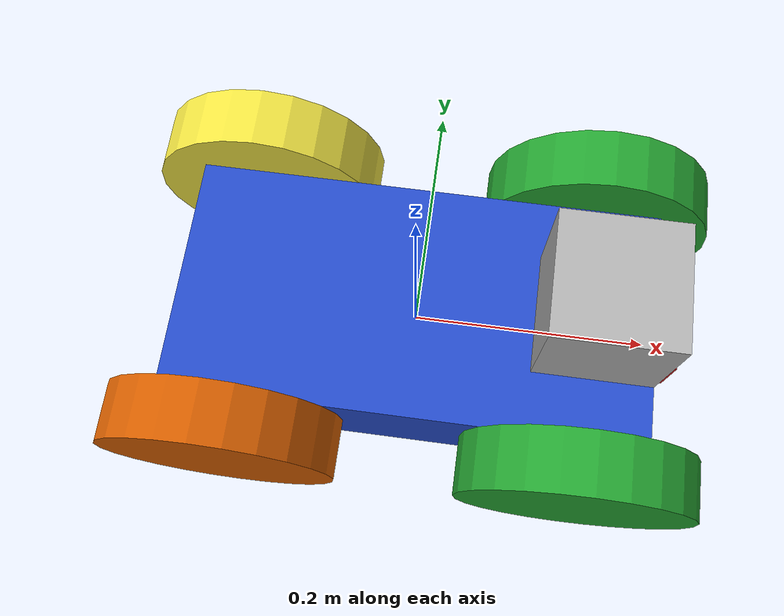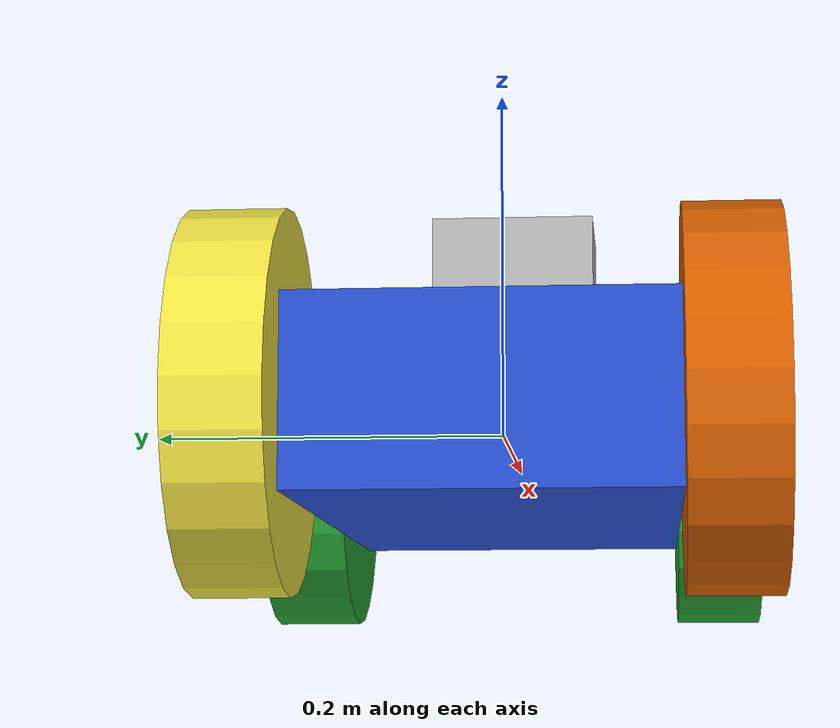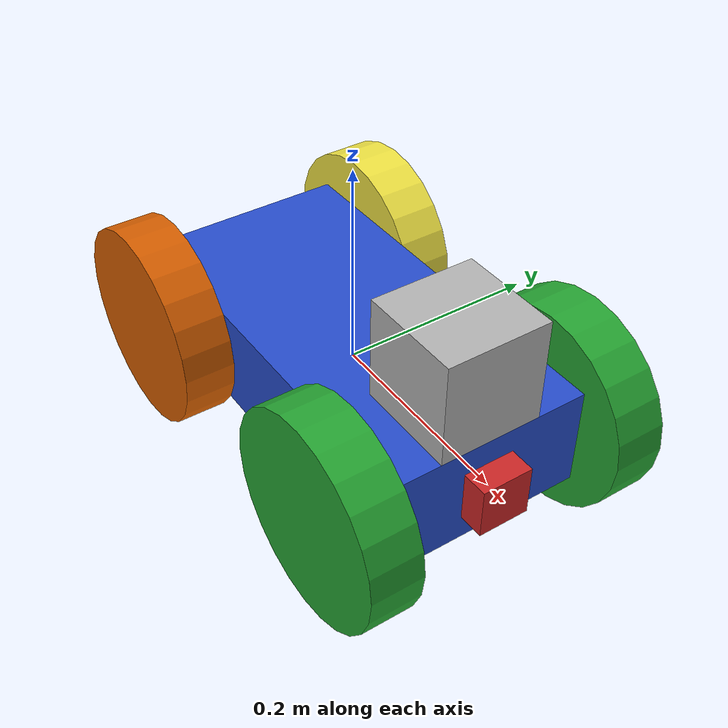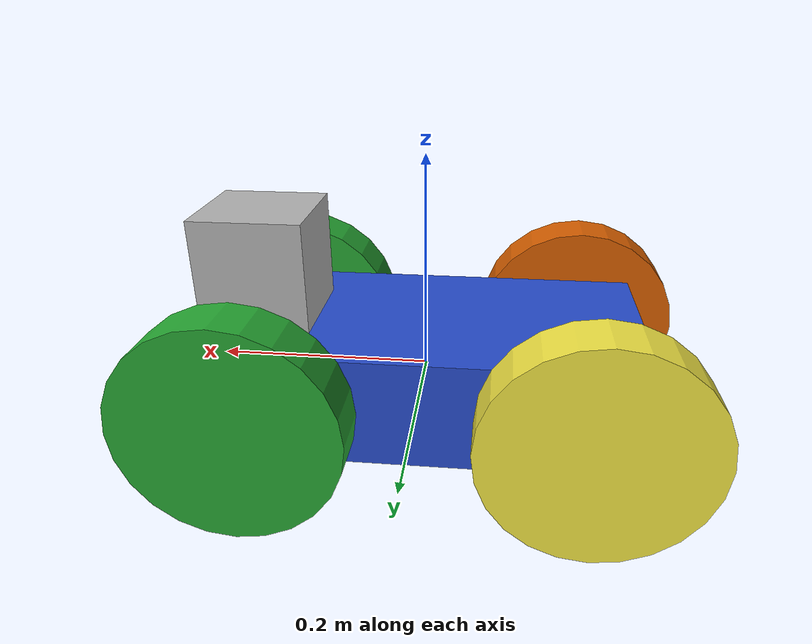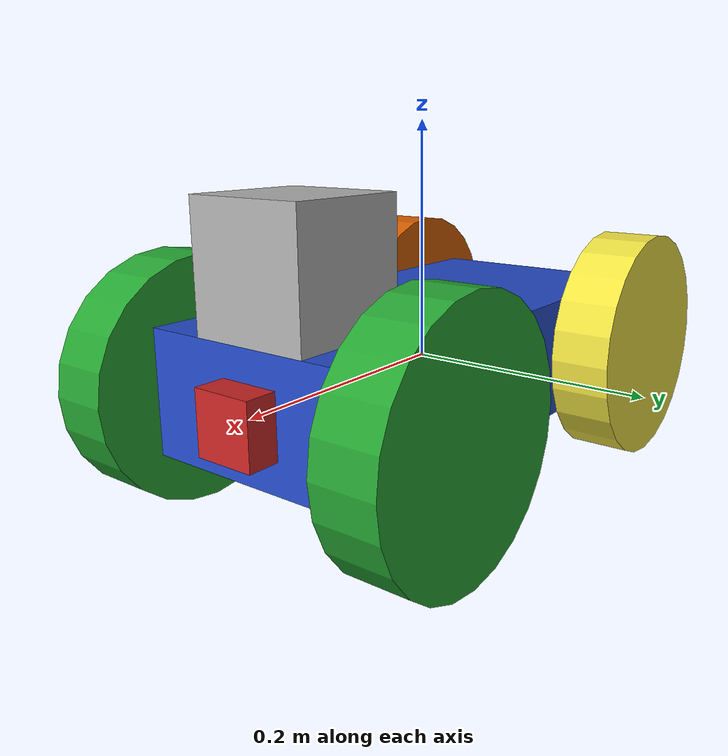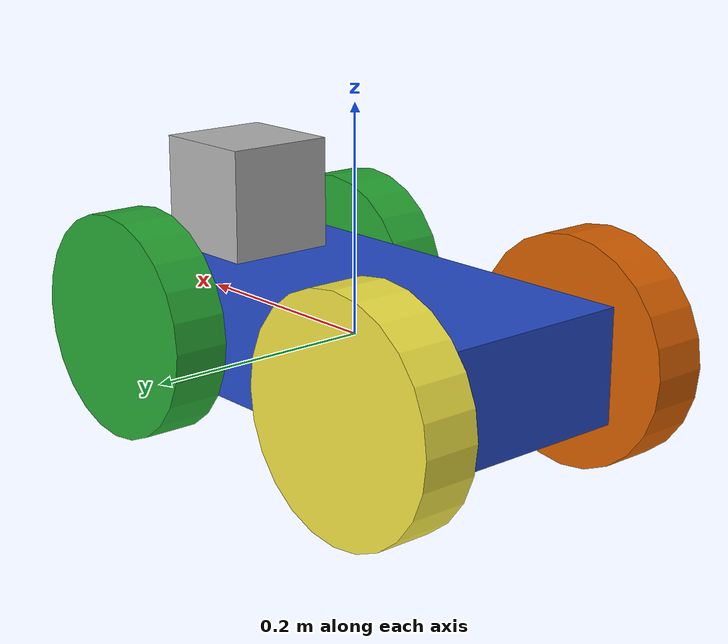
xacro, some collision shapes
<?xml version='1.0'?>

<robot name="my_robot" xmlns:xacro="http://www.ros.org/wiki/xacro">
  <xacro:include filename="$(find my_robot)/urdf/my_robot.gazebo" />
  <link name="robot_footprint"></link>

  <joint name="robot_footprint_joint" type="fixed">
    <origin xyz="0 0 0" rpy="0 0 0" />
    <parent link="robot_footprint"/>
    <child link="chassis" />
  </joint>

  <link name='chassis'>
    <pose>0 0 0.1 0 0 0</pose>

    <inertial>
      <mass value="15.0"/>
      <origin xyz="0.0 0 0" rpy=" 0 0 0"/>
      <inertia
          ixx="0.1" ixy="0" ixz="0"
          iyy="0.1" iyz="0"
          izz="0.1"
      />
    </inertial>

    <collision name='collision'>
      <origin xyz="0 0 0" rpy=" 0 0 0"/>
      <geometry>
        <box size=".4 .2 .1"/>
      </geometry>
    </collision>

    <visual name='chassis_visual'>
      <origin xyz="0 0 0" rpy=" 0 0 0"/>
      <geometry>
        <box size=".4 .2 .1"/>
      </geometry>
    </visual>

  </link>

  <!--left_wheel-->
  <link name='front_left_wheel'>
    <inertial>
      <mass value="5"/>
      <origin xyz="0 0 0" rpy="0 1.5707 1.5707" />
      <inertia
          ixx="0.1" ixy="0" ixz="0"
          iyy="0.1" iyz="0"
          izz="0.1"
      />
    </inertial>

    <collision name='front_left_wheel_collision'>
      <origin  xyz="0 0 0" rpy="0 1.5707 1.5707"/>
      <geometry>
        <cylinder length="0.05" radius="0.1"/>
      </geometry>
    </collision>

    <visual name='front_left_wheel_visual'>
      <origin xyz="0 0 0" rpy="0 1.5707 1.5707"/>
      <geometry>
        <cylinder length="0.05" radius="0.1"/>
      </geometry>
    </visual>

  </link>

  <link name='rear_left_wheel'>
    <inertial>
      <mass value="5"/>
      <origin xyz="0 0 0" rpy="0 1.5707 1.5707" />
      <inertia
          ixx="0.1" ixy="0" ixz="0"
          iyy="0.1" iyz="0"
          izz="0.1"
      />
    </inertial>

    <collision name='rear_left_wheel_collision'>
      <origin  xyz="0 0 0" rpy="0 1.5707 1.5707"/>
      <geometry>
        <cylinder length="0.05" radius="0.1"/>
      </geometry>
    </collision>

    <visual name='rear_left_wheel_visual'>
      <origin xyz="0 0 0" rpy="0 1.5707 1.5707"/>
      <geometry>
        <cylinder length="0.05" radius="0.1"/>
      </geometry>
    </visual>

  </link>

  <!--right_wheel-->
  <link name='front_right_wheel'>
    <inertial>
      <mass value="5"/>
      <origin xyz="0 0 0" rpy="0 1.5707 1.5707" />
      <inertia
          ixx="0.1" ixy="0" ixz="0"
          iyy="0.1" iyz="0"
          izz="0.1"
      />
    </inertial>

    <collision name='front_right_wheel_collision'>
      <origin  xyz="0 0 0" rpy="0 1.5707 1.5707"/>
      <geometry>
        <cylinder length="0.05" radius="0.1"/>
      </geometry>
    </collision>

    <visual name='front_right_wheel_visual'>
      <origin xyz="0 0 0" rpy="0 1.5707 1.5707"/>
      <geometry>
        <cylinder length="0.05" radius="0.1"/>
      </geometry>
    </visual>

  </link>

  <link name='rear_right_wheel'>
    <inertial>
      <mass value="5"/>
      <origin xyz="0 0 0" rpy="0 1.5707 1.5707" />
      <inertia
          ixx="0.1" ixy="0" ixz="0"
          iyy="0.1" iyz="0"
          izz="0.1"
      />
    </inertial>

    <collision name='rear_right_wheel_collision'>
      <origin  xyz="0 0 0" rpy="0 1.5707 1.5707"/>
      <geometry>
        <cylinder length="0.05" radius="0.1"/>
      </geometry>
    </collision>

    <visual name='rear_right_wheel_visual'>
      <origin xyz="0 0 0" rpy="0 1.5707 1.5707"/>
      <geometry>
        <cylinder length="0.05" radius="0.1"/>
      </geometry>
    </visual>

  </link>
  <!--left_wheel_hinge-->
  <joint name="front_left_wheel_hinge" type="continuous">
    <origin xyz="0.15 0.125 0" rpy="0 0 0"/>
    <child link="front_left_wheel" />
    <parent link="chassis"/>
    <axis xyz="0 1 0" rpy="0 0 0" />
    <limit effort="10000" velocity="1000"/>
    <joint_properties damping="1.0" friction="1.0" />
  </joint>

  <joint name="rear_left_wheel_hinge" type="continuous">
    <origin xyz="-0.15 0.125 0" rpy="0 0 0"/>
    <child link="rear_left_wheel" />
    <parent link="chassis"/>
    <axis xyz="0 1 0" rpy="0 0 0" />
    <limit effort="10000" velocity="1000"/>
    <joint_properties damping="1.0" friction="1.0" />
  </joint>

  <!--right_wheel_hinge-->
  <joint name="front_right_wheel_hinge" type="continuous">
    <origin xyz="0.15 -0.125 0" rpy="0 0 0"/>
    <child link="front_right_wheel" />
    <parent link="chassis"/>
    <axis xyz="0 1 0" rpy="0 0 0" />
    <limit effort="10000" velocity="1000"/>
    <joint_properties damping="1.0" friction="1.0" />
  </joint>

  <joint name="rear_right_wheel_hinge" type="continuous">
    <origin xyz="-0.15 -0.125 0" rpy="0 0 0"/>
    <child link="rear_right_wheel" />
    <parent link="chassis"/>
    <axis xyz="0 1 0" rpy="0 0 0" />
    <limit effort="10000" velocity="1000"/>
    <joint_properties damping="1.0" friction="1.0" />
  </joint>

  <!--Camera-->
  <link name='camera'>
    <inertial>
      <mass value="0.1"/>
      <origin xyz="0 0 0" rpy="0 0 0" />
      <inertia
          ixx="1e-6" ixy="0" ixz="0"
          iyy="1e-6" iyz="0"
          izz="1e-6"
      />
      <box_inertia m="0.1" x="0.05" y="0.05" z="0.05"/>
    </inertial>

    <collision name='camera_collision'>
      <origin xyz="0 0 0" rpy="0 0 0" />
      <geometry>
        <box size="0.05 0.05 0.05"/>
      </geometry>
    </collision>

    <visual name='camera_visual'>
      <origin xyz="0 0 0" rpy="0 0 0" />
      <geometry>
        <box size="0.05 0.05 0.05"/>
      </geometry>
    </visual>

  </link>

  <!--camera joint-->
  <joint name="camera_joint" type="fixed">
    <origin xyz="0.2 0 0" rpy="0 0 0"/>
    <child link="camera" />
    <parent link="chassis"/>
    <axis xyz="0 1 0" rpy="0 0 0" />
   </joint>

  <!--Lidar-->
  <link name='hokuyo'>
    <inertial>
      <mass value="1e-5"/>
      <origin xyz="0 0 0" rpy="0 0 0" />
      <inertia
          ixx="1e-6" ixy="0" ixz="0"
          iyy="1e-6" iyz="0"
          izz="1e-6"
      />
    </inertial>

    <collision name='hokuyo_collision'>
      <origin xyz="0 0 0" rpy="0 0 0" />
      <geometry>
        <box size="0.1 0.1 0.1"/>
      </geometry>
    </collision>

    <visual name='hokuyo_visual'>
      <origin xyz="0 0 0" rpy="0 0 0" />
      <geometry>
	 <mesh filename="package://my_robot/meshes/hokuyo.dae"/>

      </geometry>
    </visual>

  </link>

  <!--lidar joint-->
  <joint name="hokuyo_joint" type="fixed">
    <origin xyz="0.15 0 0.1" rpy="0 0 0"/>
    <child link="hokuyo" />
    <parent link="chassis"/>
    <axis xyz="0 1 0" rpy="0 0 0" />
   </joint>

<gazebo reference="front_left_wheel">
    <material>Gazebo/Green</material>
</gazebo>

<gazebo reference="front_right_wheel">
    <material>Gazebo/Green</material>
</gazebo>

<gazebo reference="chassis">
    <material>Gazebo/Blue</material>
</gazebo>

<gazebo reference="camera">
    <material>Gazebo/Red</material>
</gazebo>

</robot>
